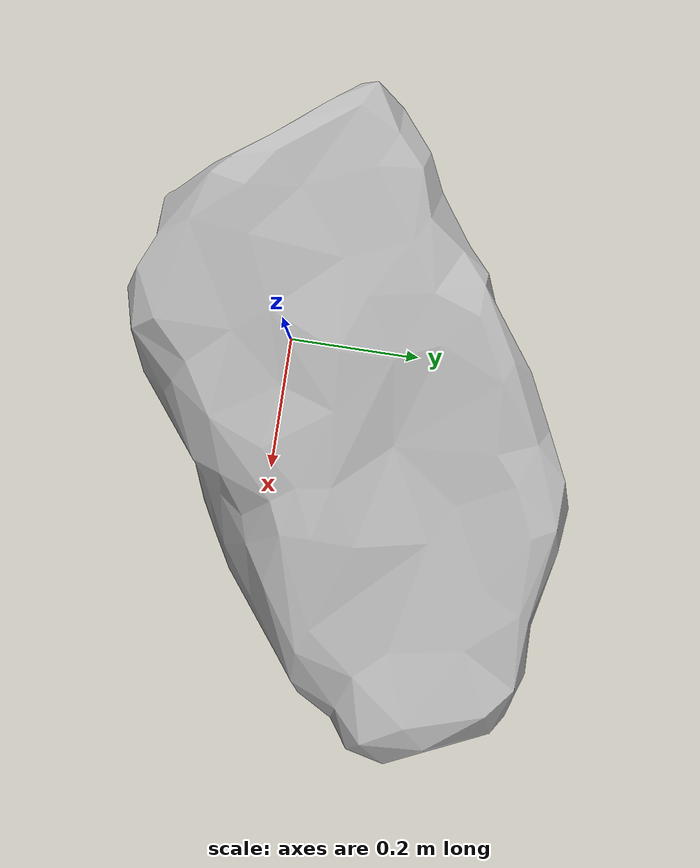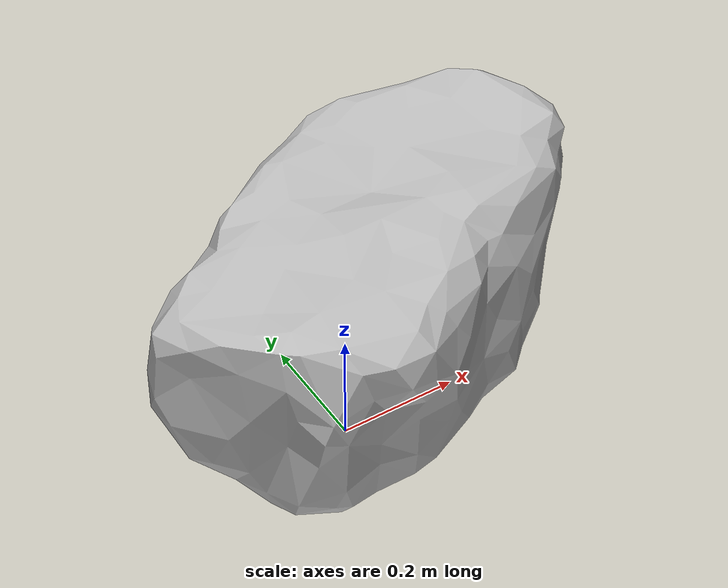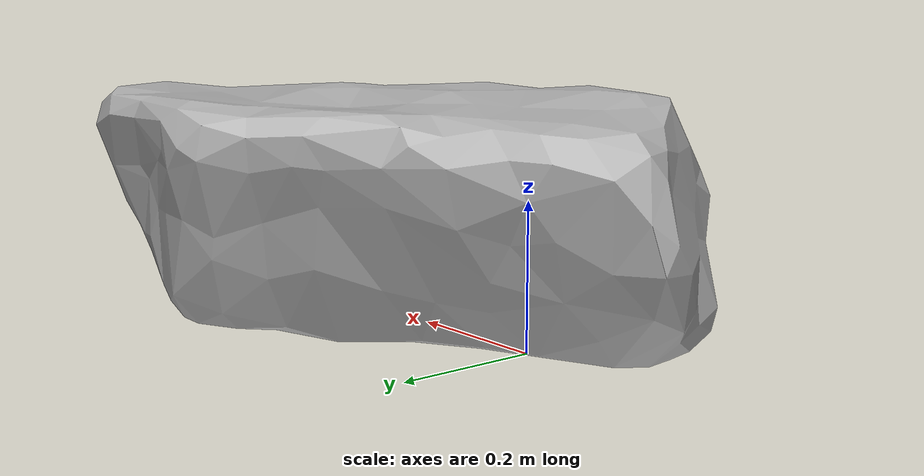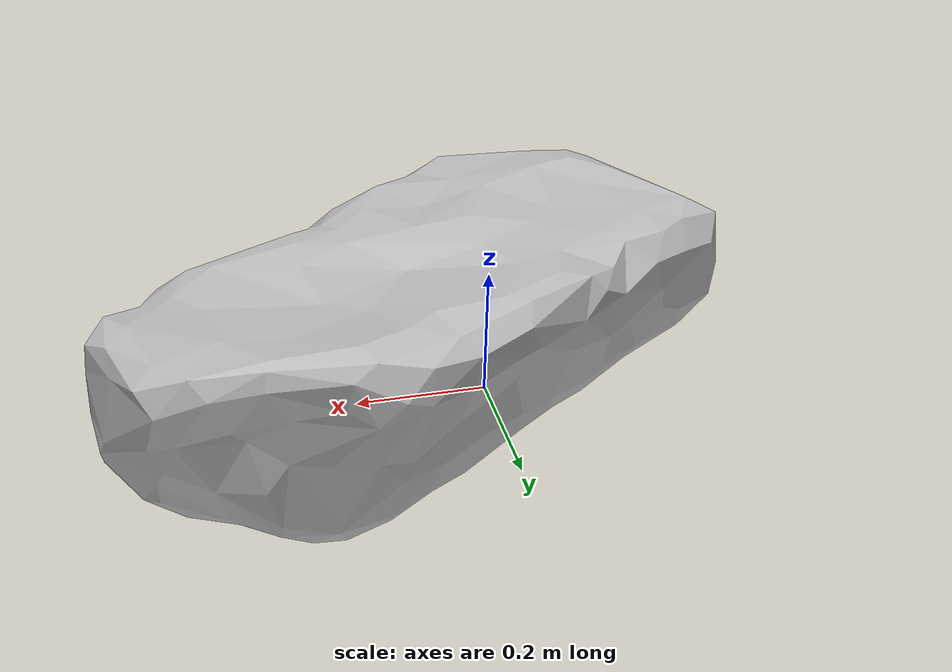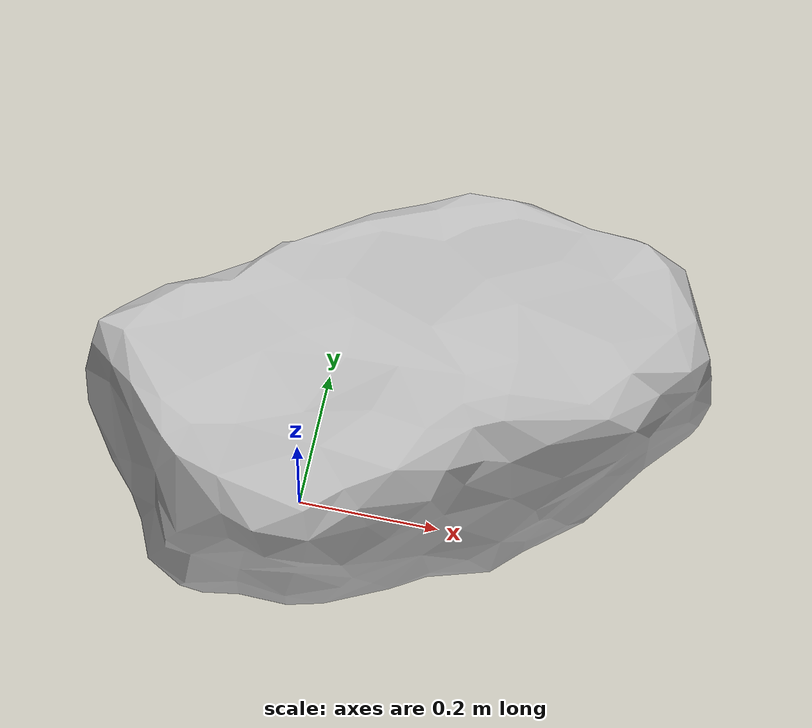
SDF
<?xml version="1.0" ?>
<sdf version="1.4">
    <model name="stone4">
      <pose>0 0 0 0 0 0</pose>
        <static>false</static>
	  <link name="stone4_link">
	    <collision name="stone4_collision">
	      <geometry>
                <mesh>
		  <uri>model://stone4/meshes/Intresto_rock_for_landscape_03.dae</uri>
                    <scale>2 2 2</scale>
		</mesh>
	      </geometry>
	    </collision>

	    <visual name="stone4_visual">
	      <geometry>
            	<mesh>
		  <uri>model://stone4/meshes/Intresto_rock_for_landscape_03.dae</uri>
                  <scale>2 2 2</scale>
		</mesh>
	      </geometry>
	    </visual>

    </link>
  </model>
</sdf>
